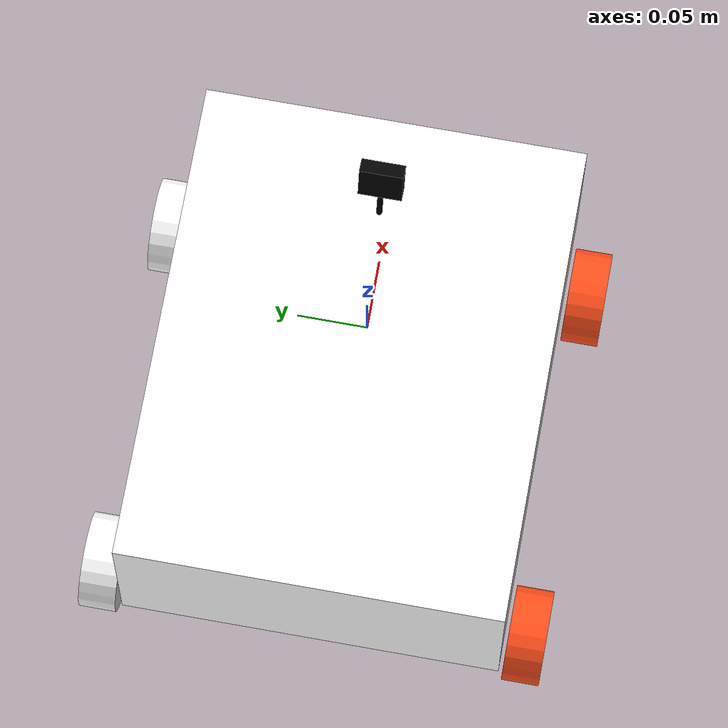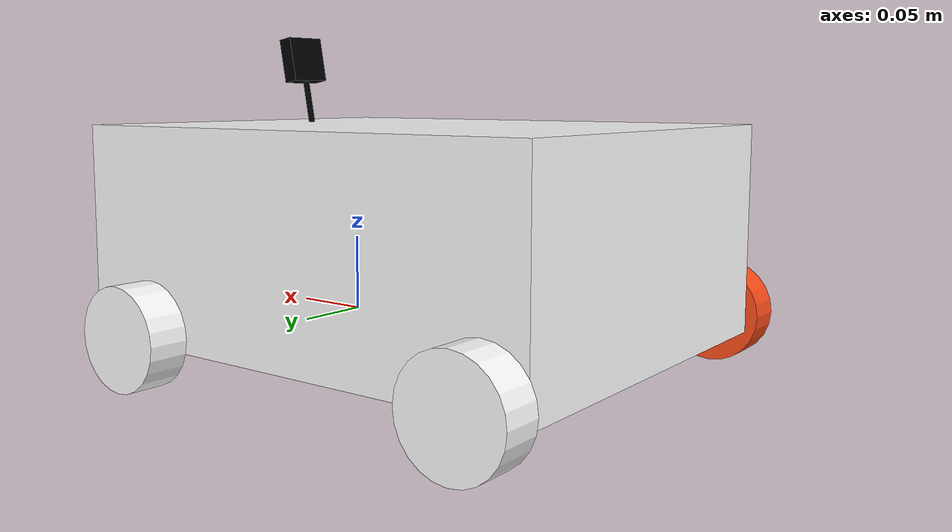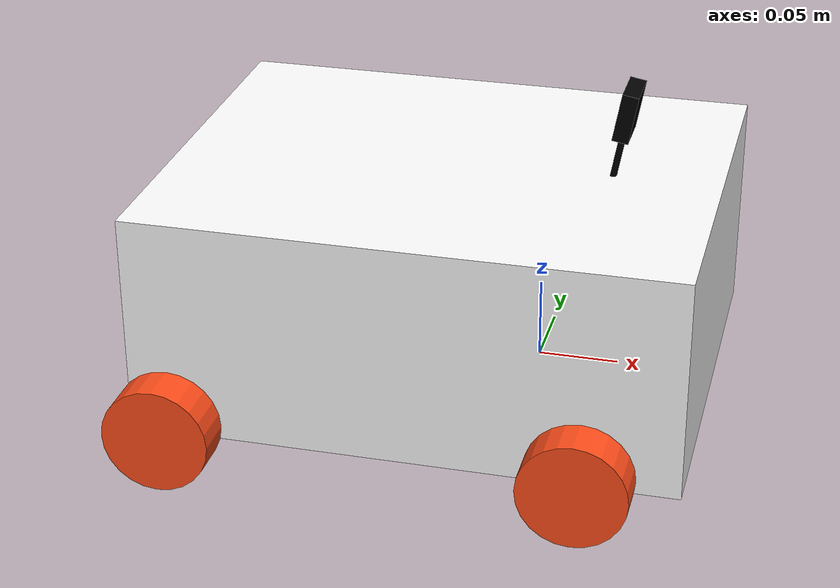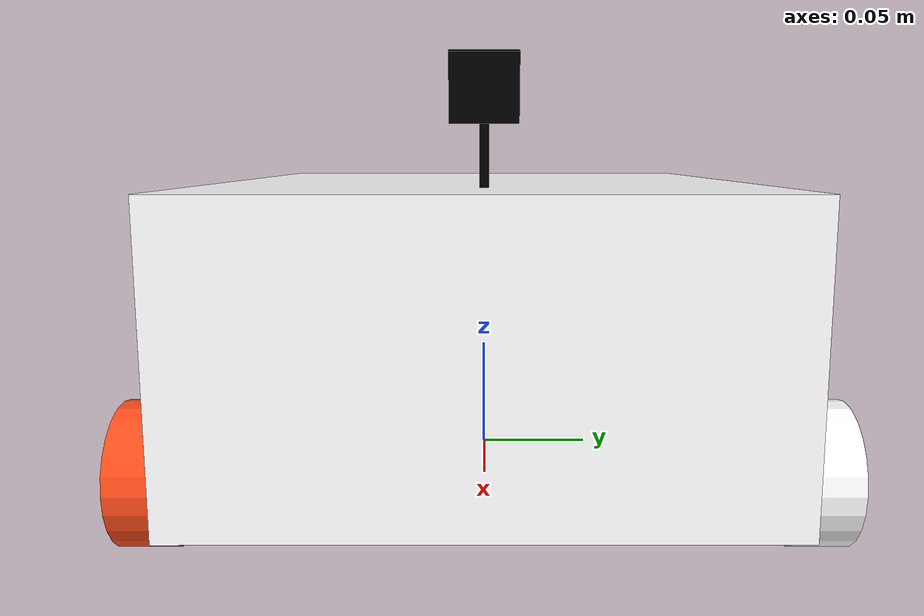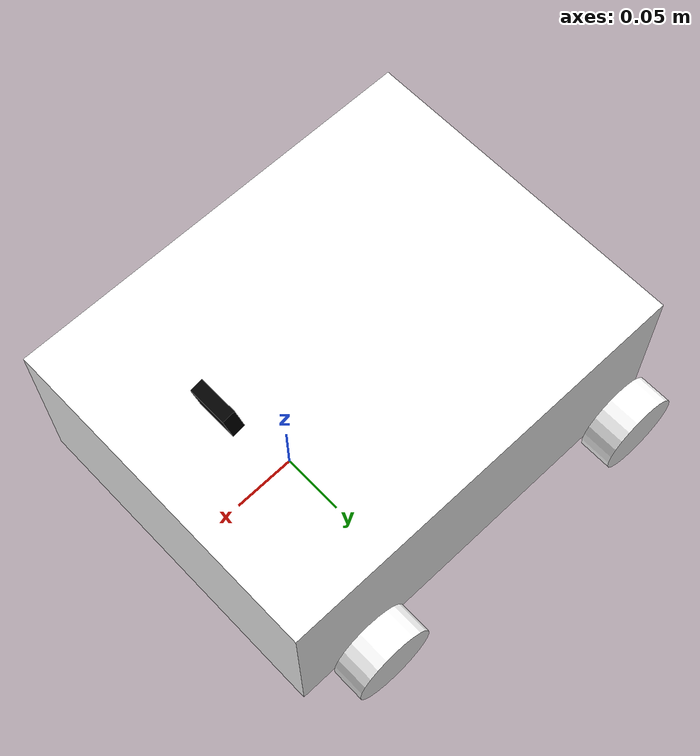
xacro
<?xml version="1.0"?>
<robot xmlns:xacro="http://www.ros.org/wiki/xacro"  name="robot">

    <xacro:arg name="use_ros2_control" default="true"/>
    <xacro:arg name="sim_mode" default="false"/>

    <xacro:include filename="dada_bot.urdf.xacro" />
    <xacro:include filename="gazebo_control.xacro" />

</robot>

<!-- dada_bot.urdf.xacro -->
<robot name ="dada" xmlns:xacro="http://www.ros.org/wiki/xacro" >
    <xacro:include filename="inertial_macros.xacro"/>

    <xacro:property name="chassis_length" value="0.335"/>
    <xacro:property name="chassis_width" value="0.265"/>
    <xacro:property name="chassis_height" value="0.138"/>
    <xacro:property name="chassis_mass" value="1.0"/>
    <xacro:property name="wheel_radius" value="0.033"/>
    <xacro:property name="wheel_thickness" value="0.026"/>
    <xacro:property name="wheel_mass" value="0.05"/>
    <xacro:property name="wheel_offset_x" value="0.226"/>
    <xacro:property name="wheel_offset_y" value="0.1485"/>
    <xacro:property name="wheel_offset_z" value="0.01"/>
    <xacro:property name="caster_wheel_radius" value="0.01"/>
    <xacro:property name="caster_wheel_mass" value="0.01"/>
    <xacro:property name="caster_wheel_offset_x" value="0.075"/>
    <xacro:property name="caster_wheel_offset_z" value="${wheel_offset_z - wheel_radius + caster_wheel_radius}"/>

    <material name="white">
        <color rgba="1 1 1 1" />
    </material>

    <material name="orange">
        <color rgba="1 0.3 0.1 1"/>
    </material>

    <material name="blue">
        <color rgba="0.2 0.2 1 1"/>
    </material>

    <material name="black">
        <color rgba="0 0 0 1"/>
    </material>

    <material name="red">
        <color rgba="1 0 0 1"/>
    </material>

    <!-- BASE LINK -->

    <link name="base_link">
       <origin xyz="5.4 4.0 0.0" rpy="0 0 0"/>

    </link>

    <!-- BASE_FOOTPRINT LINK -->

    <joint name="base_footprint_joint" type="fixed">
        <parent link="base_link"/>
        <child link="base_footprint"/>
        <origin xyz="5.4 4.0 0.0" rpy="0 0 0"/>
    </joint>

    <link name="base_footprint">
    </link>

    <!-- CHASSIS LINK -->

    <joint name="chassis_joint" type="fixed">
        <parent link="base_link"/>
        <child link="chassis"/>
        <origin xyz="${-wheel_offset_x} 0 ${-wheel_offset_z}"/>
    </joint>

    <link name="chassis">
        <visual>
            <origin xyz="${chassis_length/2} 0 ${chassis_height/2}"/>
            <geometry>
                <box size="${chassis_length} ${chassis_width} ${chassis_height}"/>
            </geometry>
            <material name="white"/>
        </visual>
        <collision>
            <origin xyz="${chassis_length/2} 0 ${chassis_height/2}"/>
            <geometry>
                <box size="${chassis_length} ${chassis_width} ${chassis_height}"/>
            </geometry>
        </collision>
        <xacro:inertial_box mass="0.5" x="${chassis_length}" y="${chassis_width}" z="${chassis_height}">
            <origin xyz="${chassis_length/2} 0 ${chassis_height/2}" rpy="0 0 0"/>
        </xacro:inertial_box>

    </link>
    <gazebo reference="chassis">
        <material>Gazebo/Orange</material>
    </gazebo>

    <!-- LEFT rear WHEEL LINK -->

    <joint name="left_wheel_joint" type="continuous">
        <parent link="base_link"/>
        <child link="left_wheel"/>
        <origin xyz="0.05 ${wheel_offset_y} 0" rpy="-${pi/2} 0 0" />
        <axis xyz="0 0 1"/>
    </joint>

    <link name="left_wheel">
        <visual>
            <geometry>
                <cylinder radius="${wheel_radius}" length= "${wheel_thickness}" />
            </geometry>
            <material name="white"/>
        </visual>
        <collision>
            <geometry>
                <cylinder radius="${wheel_radius}" length= "${wheel_thickness}" />
            </geometry>
        </collision>
        <xacro:inertial_cylinder mass="${wheel_mass}" length="${wheel_thickness}" radius="${wheel_radius}">
            <origin xyz="0 0 0" rpy="0 0 0"/>
        </xacro:inertial_cylinder>

    </link>
    <gazebo reference="left_wheel">
        <material>Gazebo/white</material>
    </gazebo>
      <!-- LEFT front WHEEL LINK -->

    <joint name="leftf_wheel_joint" type="continuous">
        <parent link="base_link"/>
        <child link="leftf_wheel"/>
        <origin xyz="-0.2 ${wheel_offset_y} 0" rpy="-${pi/2} 0 0" />
        <axis xyz="0 0 1"/>
    </joint>

    <link name="leftf_wheel">
        <visual>
            <geometry>
                <cylinder radius="${wheel_radius}" length= "${wheel_thickness}" />
            </geometry>
            <material name="white"/>
        </visual>
        <collision>
            <geometry>
                <cylinder radius="${wheel_radius}" length= "${wheel_thickness}" />
            </geometry>
        </collision>
        <xacro:inertial_cylinder mass="${wheel_mass}" length="${wheel_thickness}" radius="${wheel_radius}">
            <origin xyz="0 0 0" rpy="0 0 0"/>
        </xacro:inertial_cylinder>

    </link>
    <gazebo reference="leftf_wheel">
        <material>Gazebo/white</material>
    </gazebo>
     <!-- RIGHT rfront ear WHEEL LINK -->

    <joint name="rightf_wheel_joint" type="continuous">
        <parent link="base_link"/>
        <child link="rightf_wheel"/>
        <origin xyz="-0.2 ${-wheel_offset_y} 0" rpy="${pi/2} 0 0" />
        <axis xyz="0 0 -1"/>
    </joint>

    <link name="rightf_wheel">
        <visual>
            <geometry>
                <cylinder radius="${wheel_radius}" length="${wheel_thickness}"/>
            </geometry>
            <material name="orange"/>
        </visual>
        <collision>
            <geometry>
                <cylinder radius="${wheel_radius}" length= "${wheel_thickness}" />
            </geometry>
        </collision>
        <xacro:inertial_cylinder mass="${wheel_mass}" length="${wheel_thickness}" radius="${wheel_radius}">
            <origin xyz="0 0 0" rpy="0 0 0"/>
        </xacro:inertial_cylinder>

    </link>
    <gazebo reference="rightf_wheel">
        <material>Gazebo/Orange</material>
    </gazebo>

    <!-- RIGHT rear WHEEL LINK -->

    <joint name="right_wheel_joint" type="continuous">
        <parent link="base_link"/>
        <child link="right_wheel"/>
        <origin xyz="0.05 ${-wheel_offset_y} 0" rpy="${pi/2} 0 0" />
        <axis xyz="0 0 -1"/>
    </joint>

    <link name="right_wheel">
        <visual>
            <geometry>
                <cylinder radius="${wheel_radius}" length="${wheel_thickness}"/>
            </geometry>
            <material name="orange"/>
        </visual>
        <collision>
            <geometry>
                <cylinder radius="${wheel_radius}" length= "${wheel_thickness}" />
            </geometry>
        </collision>
        <xacro:inertial_cylinder mass="${wheel_mass}" length="${wheel_thickness}" radius="${wheel_radius}">
            <origin xyz="0 0 0" rpy="0 0 0"/>
        </xacro:inertial_cylinder>

    </link>
    <gazebo reference="right_wheel">
        <material>Gazebo/Orange</material>
    </gazebo>

    <joint name="camera_joint" type="fixed">
        <parent link="chassis"/>
        <child link="camera_link"/>
        <origin xyz="0.276 0 0.181" rpy="0 0.18 0"/>
    </joint>

    <link name="camera_link">
        <visual>
            <geometry>
                <box size="0.010 0.03 0.03"/>
            </geometry>
            <material name="black"/>
        </visual>
        <visual>
            <origin xyz="0 0 -0.05"/>
            <geometry>
                <cylinder radius="0.002" length="0.1"/>
            </geometry>
            <material name="black"/>
        </visual>
    </link>

          <!-- CAMERA JOIMT -->

    <joint name="camera_optical_joint" type="fixed">
        <parent link="camera_link"/>
        <child link="camera_link_optical"/>
        <origin xyz="0 0 0" rpy="${-pi/2} 0 ${-pi/2}"/>
    </joint>

    <link name="camera_link_optical"></link>

    <gazebo reference="camera_link">
        <material>Gazebo/Black</material>

        <sensor name="camera" type="camera">
            <pose> 0 0 0 0 0 0 </pose>
            <visualize>true</visualize>
            <update_rate>10</update_rate>
            <camera>
                <horizontal_fov>1.089</horizontal_fov>
                <image>
                    <format>R8G8B8</format>
                    <width>640</width>
                    <height>480</height>
                </image>
                <clip>
                    <near>0.05</near>
                    <far>8.0</far>
                </clip>
            </camera>
            <plugin name="camera_controller" filename="libgazebo_ros_camera.so">
                <frame_name>camera_link_optical</frame_name>
            </plugin>
        </sensor>
    </gazebo>

</robot>
